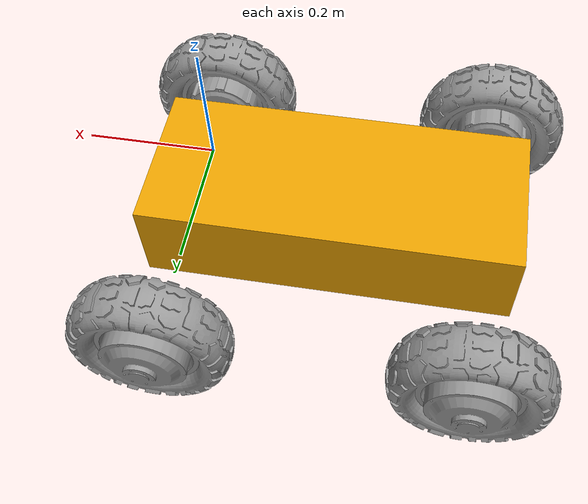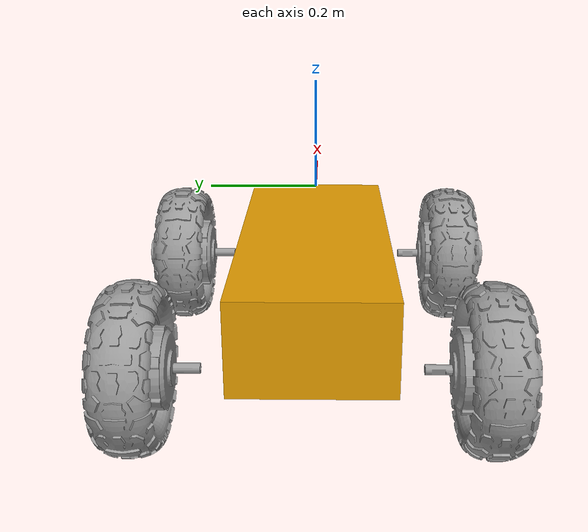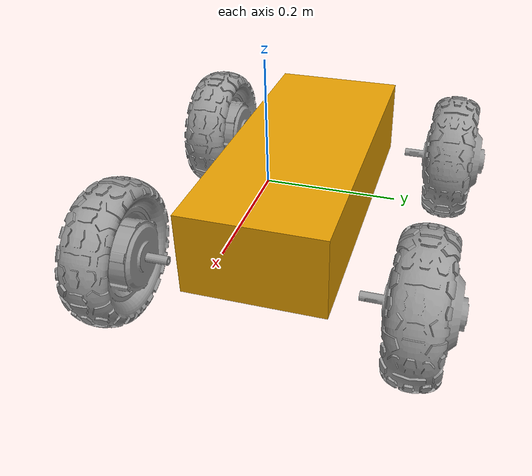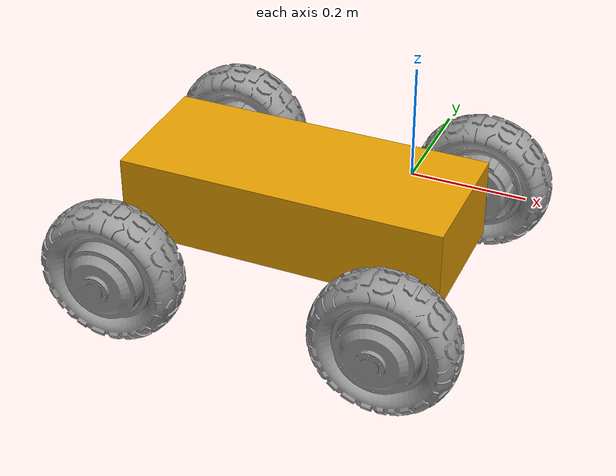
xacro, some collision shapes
<?xml version="1.0"?>
<robot xmlns:xacro="http://www.ros.org/wiki/xacro" >

    <material name="black"><color rgba="0 0 0 1"/></material>

    <link name="chasis">
        <inertial>
            <origin xyz="-0.157847 -0.000989 -0.068034" rpy="0 0 0" />
            <mass value="18.136" />
            <inertia ixx="0.127" ixy="0.001" ixz="0.015" iyy="0.318" iyz="0" izz="0.329" />
        </inertial>
        <visual><geometry><mesh filename="file://$(find mmdt_ros2)/meshes/chasis.STL" /></geometry></visual>
        <collision><origin xyz="-0.2 0 -0.1"/><geometry><box size="0.6 0.25 0.15"/></geometry></collision>
    </link>

    <link name="rueda1">
        <inertial>
            <origin xyz="-0.000001 0.10103 -0.000002" rpy="0 0 0" />
            <mass value="2.2464" />
            <inertia ixx="0.008" ixy="0" ixz="0" iyy="0.011" iyz="0" izz="0.008" />
        </inertial>
        <visual><geometry><mesh filename="file://$(find mmdt_ros2)/meshes/rueda1.STL" /></geometry></visual>
        <collision><origin xyz="0 0.1 0" rpy="1.57 0 0" /><geometry><cylinder length="0.06" radius="0.13"/></geometry></collision>
    </link>
    <joint name="ejeRueda_FI" type="continuous">
        <origin xyz="0.054 0.1651 -0.1548" /><parent link="chasis" /><child link="rueda1" /><axis xyz="0 1 0" />
        <limit effort="1000" velocity="20.0"/><dynamics damping="0.7" friction="0.1" />
    </joint>

    <link name="rueda2">
        <inertial>
            <origin xyz="0.000001 -0.10103 -0.000002" rpy="0 0 0" />
            <mass value="2.2464" />
            <inertia ixx="0.008" ixy="0" ixz="0" iyy="0.011" iyz="0" izz="0.008" />
        </inertial>
        <visual><geometry><mesh filename="file://$(find mmdt_ros2)/meshes/rueda2.STL" /></geometry></visual>
        <collision><origin xyz="0 -0.1 0" rpy="1.57 0 0" /><geometry><cylinder length="0.06" radius="0.13"/></geometry></collision>
    </link>
    <joint name="ejeRueda_FD" type="continuous">
        <origin xyz="0.054 -0.1651 -0.1548" /><parent link="chasis" /><child link="rueda2" /><axis xyz="0 1 0" />
        <limit effort="1000" velocity="20.0"/><dynamics damping="0.7" friction="0.1" />
    </joint>

    <link name="rueda3">
        <inertial>
            <origin xyz="-0.000001 0.10103 -0.000002" rpy="0 0 0" />
            <mass value="2.2464" />
            <inertia ixx="0.008" ixy="0" ixz="0" iyy="0.011" iyz="0" izz="0.008" />
        </inertial>
        <visual><geometry><mesh filename="file://$(find mmdt_ros2)/meshes/rueda3.STL" /></geometry></visual>
        <collision><origin xyz="0 0.1 0" rpy="1.57 0 0" /><geometry><cylinder length="0.06" radius="0.13"/></geometry></collision>
    </link>
    <joint name="ejeRueda_TI" type="continuous">
        <origin xyz="-0.446 0.1651 -0.1548" /><parent link="chasis" /><child link="rueda3" /><axis xyz="0 1 0" />
        <limit effort="1000" velocity="20.0"/><dynamics damping="0.7" friction="0.1" />
    </joint>

    <link name="rueda4">
        <inertial>
            <origin xyz="0.000001 -0.10103 -0.000002" rpy="0 0 0" />
            <mass value="2.2464" />
            <inertia ixx="0.008" ixy="0" ixz="0" iyy="0.011" iyz="0" izz="0.008" />
        </inertial>
        <visual><geometry><mesh filename="file://$(find mmdt_ros2)/meshes/rueda4.STL" /></geometry></visual>
        <collision><origin xyz="0 -0.1 0" rpy="1.57 0 0" /><geometry><cylinder length="0.06" radius="0.13"/></geometry></collision>
    </link>
    <joint name="ejeRueda_TD" type="continuous">
        <origin xyz="-0.446 -0.1651 -0.155" /><parent link="chasis" /><child link="rueda4" /><axis xyz="0 1 0" />
        <limit effort="1000" velocity="20.0"/><dynamics damping="0.7" friction="0.1" />
    </joint>

    <transmission name="ejeRueda_FI_transmission"><type>transmission_interface/SimpleTransmission</type><joint name="ejeRueda_FI"><hardwareInterface>hardware_interface/VelocityJointInterface</hardwareInterface></joint><actuator name="ejeRueda_FI_motor"><hardwareInterface>hardware_interface/VelocityJointInterface</hardwareInterface></actuator></transmission>
    <transmission name="ejeRueda_FD_transmission"><type>transmission_interface/SimpleTransmission</type><joint name="ejeRueda_FD"><hardwareInterface>hardware_interface/VelocityJointInterface</hardwareInterface></joint><actuator name="ejeRueda_FD_motor"><hardwareInterface>hardware_interface/VelocityJointInterface</hardwareInterface></actuator></transmission>
    <transmission name="ejeRueda_TI_transmission"><type>transmission_interface/SimpleTransmission</type><joint name="ejeRueda_TI"><hardwareInterface>hardware_interface/VelocityJointInterface</hardwareInterface></joint><actuator name="ejeRueda_TI_motor"><hardwareInterface>hardware_interface/VelocityJointInterface</hardwareInterface></actuator></transmission>
    <transmission name="ejeRueda_TD_transmission"><type>transmission_interface/SimpleTransmission</type><joint name="ejeRueda_TD"><hardwareInterface>hardware_interface/VelocityJointInterface</hardwareInterface></joint><actuator name="ejeRueda_TD_motor"><hardwareInterface>hardware_interface/VelocityJointInterface</hardwareInterface></actuator></transmission>

    <gazebo reference="rueda1">
        <mu1>0.5</mu1> <mu2>0.5</mu2> <kp>10000000.0</kp> <kd>1.0</kd>   <minDepth>0.001</minDepth> <maxVel>0.1</maxVel> <material>Gazebo/Grey</material>
    </gazebo>
    <gazebo reference="rueda2">
        <mu1>0.5</mu1> <mu2>0.5</mu2> <kp>10000000.0</kp> <kd>1.0</kd>   <minDepth>0.001</minDepth> <maxVel>0.1</maxVel> <material>Gazebo/Grey</material>
    </gazebo>
    <gazebo reference="rueda3">
        <mu1>0.5</mu1> <mu2>0.5</mu2> <kp>10000000.0</kp> <kd>1.0</kd>   <minDepth>0.001</minDepth> <maxVel>0.1</maxVel> <material>Gazebo/Grey</material>
    </gazebo>
    <gazebo reference="rueda4">
        <mu1>0.5</mu1> <mu2>0.5</mu2> <kp>10000000.0</kp> <kd>1.0</kd>   <minDepth>0.001</minDepth> <maxVel>0.1</maxVel> <material>Gazebo/Grey</material>
    </gazebo>

</robot>
